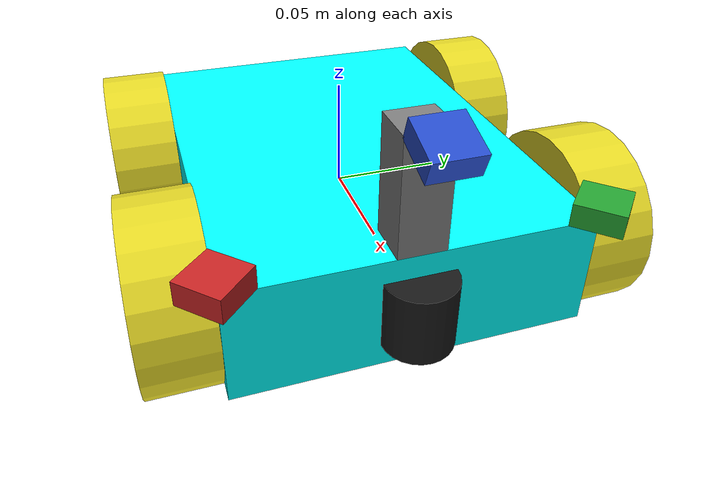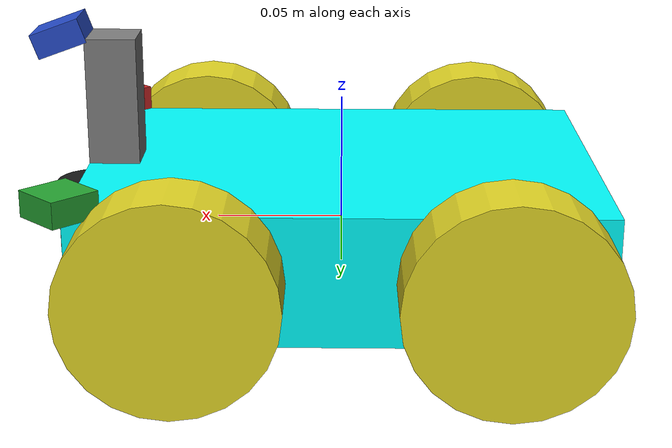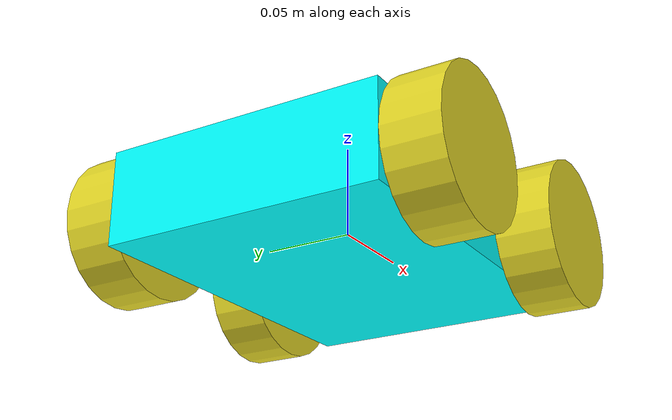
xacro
<?xml version='1.0'?>
<robot name="robot" xmlns:xacro="http://www.ros.org/wiki/xacro">

  <xacro:property name="camera_width" value="0.02"/>
  <xacro:property name="camera_length" value="0.02"/>
  <xacro:property name="camera_height" value="0.01"/>
  <xacro:property name="camera_mass" value="0.01"/>
  <xacro:property name="LiDAR_mass" value="0.01"/>

  <xacro:property name="mast_height" value="0.05"/>
  <xacro:property name="mast_mass" value="0.01"/>

  <xacro:property name="chassis_width" value="0.15"/>
  <xacro:property name="chassis_length" value="0.2"/>
  <xacro:property name="chassis_height" value="0.05"/>
  <xacro:property name="chassis_mass" value="0.5"/>

  <xacro:property name="wheel_radius" value="0.04"/>
  <xacro:property name="wheel_width" value="0.03"/>
  <xacro:property name="wheel_mass" value="0.025"/>

  <xacro:property name="camera_side_fov_deg" value="130"/>
  <xacro:property name="camera_fov_deg" value="100"/>
  <xacro:property name="side_cam_width" value="1920"/>
  <xacro:property name="side_cam_height" value="1080"/>

  <xacro:include filename="$(find robbie)/urdf/macros.xacro"/>
  <xacro:include filename="$(find robbie)/urdf/materials.xacro"/>

  <link name='camera_left_link'>
    <xacro:box_inertial name="camera_left_link" m="${camera_mass}" x="${camera_width}" y="${camera_length}" z="${camera_height}"/>
    <collision name='camera_left_link_collision'>
      <geometry>
        <box size="${camera_length} ${camera_width} ${camera_height}"/>
      </geometry>
    </collision>
    <visual name='camera_left_link_visual'>
      <origin xyz="0 0 0" rpy="0 0 0"/>
      <geometry>
        <box size="${camera_length} ${camera_width} ${camera_height}"/>
      </geometry>
    </visual>
  </link>

  <link name='camera_right_link'>
    <xacro:box_inertial name="camera_right_link" m="${camera_mass}" x="${camera_width}" y="${camera_length}" z="${camera_height}"/>
    <collision name='camera_right_link_collision'>
      <geometry>
        <box size="${camera_length} ${camera_width} ${camera_height}"/>
      </geometry>
    </collision>
    <visual name='camera_right_link_visual'>
      <origin xyz="0 0 0" rpy="0 0 0"/>
      <geometry>
        <box size="${camera_length} ${camera_width} ${camera_height}"/>
      </geometry>
    </visual>
  </link>

  <link name='chassis'>
    <inertial>
      <mass value="${chassis_mass}"/>
      <origin xyz="-0.01 0 0" rpy="0 0 0"/>
      <inertia
        ixx="${(1/12) * chassis_mass * (chassis_width*chassis_width + chassis_height*chassis_height)}"
        ixy="0.0" ixz="0.0"
        iyy="${(1/12) * chassis_mass * (chassis_length*chassis_length + chassis_height*chassis_height)}"
        iyz="0.0"
        izz="${(1/12) * chassis_mass * (chassis_length*chassis_length + chassis_width*chassis_width)}"/>
    </inertial>
    <collision name='chassis_collision'>
      <geometry>
        <box size="${chassis_length} ${chassis_width} ${chassis_height}"/>
      </geometry>
    </collision>
    <visual name='chassis_visual'>
      <origin xyz="0 0 0" rpy=" 0 0 0"/>
      <geometry>
        <box size="${chassis_length} ${chassis_width} ${chassis_height}"/>
      </geometry>
      <material name="Cyan">
        <color rgba="0 1.0 1.0 1.0"/>
      </material>
    </visual>
  </link>

  <xacro:macro name="wheel_link" params="name">
    <link name='${name}'>
      <xacro:cylinder_inertial name="${name}" m="${wheel_mass}" r="${wheel_radius}" h="${wheel_width}"/>
      <collision name='${name}_collision'>
        <origin xyz="0 0 0" rpy="1.5708 0 0"/>
        <geometry>
          <cylinder radius="${wheel_radius}" length="${wheel_width}"/>
        </geometry>
      </collision>
      <visual name='${name}_visual'>
        <origin xyz="0 0 0" rpy="1.5708 0 0"/>
        <geometry>
          <cylinder radius="${wheel_radius}" length="${wheel_width}"/>
        </geometry>
      </visual>
    </link>
  </xacro:macro>

  <xacro:wheel_link name="wheel_FR"/>
  <xacro:wheel_link name="wheel_FL"/>
  <xacro:wheel_link name="wheel_RR"/>
  <xacro:wheel_link name="wheel_RL"/>

  <link name='camera_mast'>
    <xacro:box_inertial name="camera_mast" m="${mast_mass}" x="0.02" y="0.02" z="${mast_height}"/>
    <visual>
      <geometry>
        <box size="0.02 0.02 ${mast_height}"/>
      </geometry>
      <material name="Gray"><color rgba="0.5 0.5 0.5 1.0"/></material>
    </visual>
    <collision>
      <geometry>
        <box size="0.02 0.02 ${mast_height}"/>
      </geometry>
    </collision>
  </link>

  <link name='camera_link'>
    <xacro:box_inertial name="camera_link" m="${camera_mass}" x="${camera_width}" y="${camera_length}" z="${camera_height}"/>
    <collision name='camera_link_collision'>
      <geometry>
        <box size="${camera_length} ${camera_width} ${camera_height}"/>
      </geometry>
    </collision>
    <visual name='camera_link_visual'>
      <origin xyz="0 0 0" rpy=" 0 0 0"/>
      <geometry>
        <box size="${camera_length} ${camera_width} ${camera_height}"/>
      </geometry>
    </visual>
  </link>

  <link name="hokuyo_link">
    <collision>
      <origin xyz="0 0 0" rpy="0 0 0"/>
      <geometry>
        <box size="0.03 0.03 0.03"/>
      </geometry>
    </collision>
    <visual>
      <origin xyz="0 0 0" rpy="0 0 0"/>
      <geometry>
        <cylinder radius="0.015" length="0.03"/>
      </geometry>
      <material name="Black">
        <color rgba="0.1 0.1 0.1 1.0"/>
      </material>
    </visual>
    <inertial>
      <mass value="${LiDAR_mass}" />
      <origin xyz="0 0 0" rpy="0 0 0"/>
      <inertia ixx="1e-6" ixy="0" ixz="0" iyy="1e-6" iyz="0" izz="1e-6" />
    </inertial>
  </link>

  <joint name="camera_left_joint" type="fixed">
    <parent link="chassis"/>
    <child link="camera_left_link"/>
    <origin xyz="${chassis_length/2} ${chassis_width/2} ${chassis_height/2 + camera_height/2}" rpy="0 0 ${pi/4}"/>
  </joint>

  <joint name="camera_right_joint" type="fixed">
    <parent link="chassis"/>
    <child link="camera_right_link"/>
    <origin xyz="${chassis_length/2} -${chassis_width/2} ${chassis_height/2 + camera_height/2}" rpy="0 0 -${pi/4}"/>
  </joint>

  <joint name="hokuyo_joint" type="fixed">
    <axis xyz="0 1 0" />
    <origin xyz="${chassis_length/2} 0 0" rpy="0 0 0"/>
    <parent link="chassis"/>
    <child link="hokuyo_link"/>
  </joint>

  <joint name="wheel_FR_joint" type="continuous">
    <parent link="chassis"/>
    <child link="wheel_FR"/>
    <origin xyz="${chassis_length/2-wheel_radius} -${chassis_width/2+wheel_width/2} 0" rpy="0 0 0"/>
    <axis xyz="0 1 0"/>
  </joint>

  <joint name="wheel_FL_joint" type="continuous">
    <parent link="chassis"/>
    <child link="wheel_FL"/>
    <origin xyz="${chassis_length/2-wheel_radius} ${chassis_width/2+wheel_width/2} 0" rpy="0 0 0"/>
    <axis xyz="0 1 0"/>
  </joint>

  <joint name="wheel_RR_joint" type="continuous">
    <parent link="chassis"/>
    <child link="wheel_RR"/>
    <origin xyz="-${chassis_length/2-wheel_radius} -${chassis_width/2+wheel_width/2} 0" rpy="0 0 0"/>
    <axis xyz="0 1 0"/>
  </joint>

  <joint name="wheel_RL_joint" type="continuous">
    <parent link="chassis"/>
    <child link="wheel_RL"/>
    <origin xyz="-${chassis_length/2-wheel_radius} ${chassis_width/2+wheel_width/2} 0" rpy="0 0 0"/>
    <axis xyz="0 1 0"/>
  </joint>

  <joint name="chassis_to_mast_joint" type="fixed">
    <parent link="chassis"/>
    <child link="camera_mast"/>
    <origin xyz="${chassis_length/2 - 0.01} 0 ${chassis_height/2 + mast_height/2}" rpy="0 0 0"/>
  </joint>

  <joint name="camera_joint" type="fixed">
    <parent link="camera_mast"/>
    <child link="camera_link"/>
    <origin xyz="0.02 0 ${mast_height/2}" rpy="0 0.35 0"/>
  </joint>

  <gazebo reference="chassis"><material>Gazebo/Orange</material></gazebo>
  <gazebo reference="camera_link"><material>Gazebo/Blue</material></gazebo>
  <gazebo reference="camera_mast"><material>Gazebo/Grey</material></gazebo>
  <gazebo reference="wheel_FL"><material>Gazebo/Yellow</material></gazebo>
  <gazebo reference="wheel_FR"><material>Gazebo/Yellow</material></gazebo>
  <gazebo reference="wheel_RL"><material>Gazebo/Yellow</material></gazebo>
  <gazebo reference="wheel_RR"><material>Gazebo/Yellow</material></gazebo>
  <gazebo reference="camera_left_link"><material>Gazebo/Green</material></gazebo>
  <gazebo reference="camera_right_link"><material>Gazebo/Red</material></gazebo>

  <gazebo>
    <plugin name="skid_steer_drive_controller" filename="libgazebo_ros_skid_steer_drive.so">
      <updateRate>100.0</updateRate>
      <leftFrontJoint>wheel_FL_joint</leftFrontJoint>
      <rightFrontJoint>wheel_FR_joint</rightFrontJoint>
      <leftRearJoint>wheel_RL_joint</leftRearJoint>
      <rightRearJoint>wheel_RR_joint</rightRearJoint>
      <wheelSeparation>0.18</wheelSeparation>
      <wheelDiameter>0.08</wheelDiameter>
      <robotBaseFrame>chassis</robotBaseFrame>
      <torque>0.5</torque>
      <topicName>cmd_vel</topicName>
      <broadcastTF>true</broadcastTF>
    </plugin>
  </gazebo>

  <gazebo reference="camera_left_link">
    <sensor type="camera" name="camera_left_sensor">
      <update_rate>5.0</update_rate>
      <camera name="left">
        <horizontal_fov>${camera_side_fov_deg * pi / 180}</horizontal_fov>
        <image>
          <width>${side_cam_width}</width>
          <height>${side_cam_height}</height>
          <format>R8G8B8</format>
        </image>
        <clip>
          <near>0.02</near>
          <far>300</far>
        </clip>
        <noise>
          <type>gaussian</type>
          <mean>0.0</mean>
          <stddev>0.007</stddev>
        </noise>
      </camera>
      <plugin name="camera_left_controller" filename="libgazebo_ros_camera.so">
        <alwaysOn>true</alwaysOn>
        <updateRate>0.0</updateRate>
        <cameraName>rrbot/camera_left</cameraName>
        <imageTopicName>image_raw</imageTopicName>
        <cameraInfoTopicName>camera_info</cameraInfoTopicName>
        <frameName>camera_left_link</frameName>
        <hackBaseline>0.07</hackBaseline>
      </plugin>
    </sensor>
  </gazebo>

  <gazebo reference="camera_right_link">
    <sensor type="camera" name="camera_right_sensor">
      <update_rate>5.0</update_rate>
      <camera name="right">
        <horizontal_fov>${camera_side_fov_deg * pi / 180}</horizontal_fov>
        <image>
          <width>${side_cam_width}</width>
          <height>${side_cam_height}</height>
          <format>R8G8B8</format>
        </image>
        <clip>
          <near>0.02</near>
          <far>300</far>
        </clip>
        <noise>
          <type>gaussian</type>
          <mean>0.0</mean>
          <stddev>0.007</stddev>
        </noise>
      </camera>
      <plugin name="camera_right_controller" filename="libgazebo_ros_camera.so">
        <alwaysOn>true</alwaysOn>
        <updateRate>0.0</updateRate>
        <cameraName>rrbot/camera_right</cameraName>
        <imageTopicName>image_raw</imageTopicName>
        <cameraInfoTopicName>camera_info</cameraInfoTopicName>
        <frameName>camera_right_link</frameName>
        <hackBaseline>0.07</hackBaseline>
      </plugin>
    </sensor>
  </gazebo>

  <gazebo reference="camera_link">
    <sensor type="camera" name="camera1">
      <update_rate>30.0</update_rate>
      <camera name="head">
        <horizontal_fov>${camera_fov_deg * pi / 180}</horizontal_fov>
        <image>
          <width>800</width>
          <height>800</height>
          <format>R8G8B8</format>
        </image>
        <clip>
          <near>0.02</near>
          <far>300</far>
        </clip>
        <noise>
          <type>gaussian</type>
          <mean>0.0</mean>
          <stddev>0.007</stddev>
        </noise>
      </camera>
      <plugin name="camera_controller" filename="libgazebo_ros_camera.so">
        <alwaysOn>true</alwaysOn>
        <updateRate>0.0</updateRate>
        <cameraName>rrbot/camera1</cameraName>
        <imageTopicName>image_raw</imageTopicName>
        <cameraInfoTopicName>camera_info</cameraInfoTopicName>
        <frameName>camera_link</frameName>
        <hackBaseline>0.07</hackBaseline>
      </plugin>
    </sensor>
  </gazebo>

  <gazebo reference="hokuyo_link">
    <material>Gazebo/Black</material>
  </gazebo>

  <gazebo reference="hokuyo_link">
    <sensor type="ray" name="head_hokuyo_sensor">
      <pose>0 0 0 0 0 0</pose>
      <visualize>true</visualize> <update_rate>40</update_rate>
      <ray>
        <scan>
          <horizontal>
            <samples>720</samples>
            <resolution>1</resolution>
            <min_angle>-1.570796</min_angle> <max_angle>1.570796</max_angle>  </horizontal>
        </scan>
        <range>
          <min>0.10</min>
          <max>4</max>
          <resolution>0.01</resolution>
        </range>
        <noise>
          <type>gaussian</type>
          <mean>0.0</mean>
          <stddev>0.01</stddev>
        </noise>
      </ray>
      <plugin name="gazebo_ros_head_hokuyo_controller" filename="libgazebo_ros_laser.so">
        <topicName>/scan</topicName>
        <frameName>hokuyo_link</frameName>
      </plugin>
    </sensor>
  </gazebo>

</robot>
